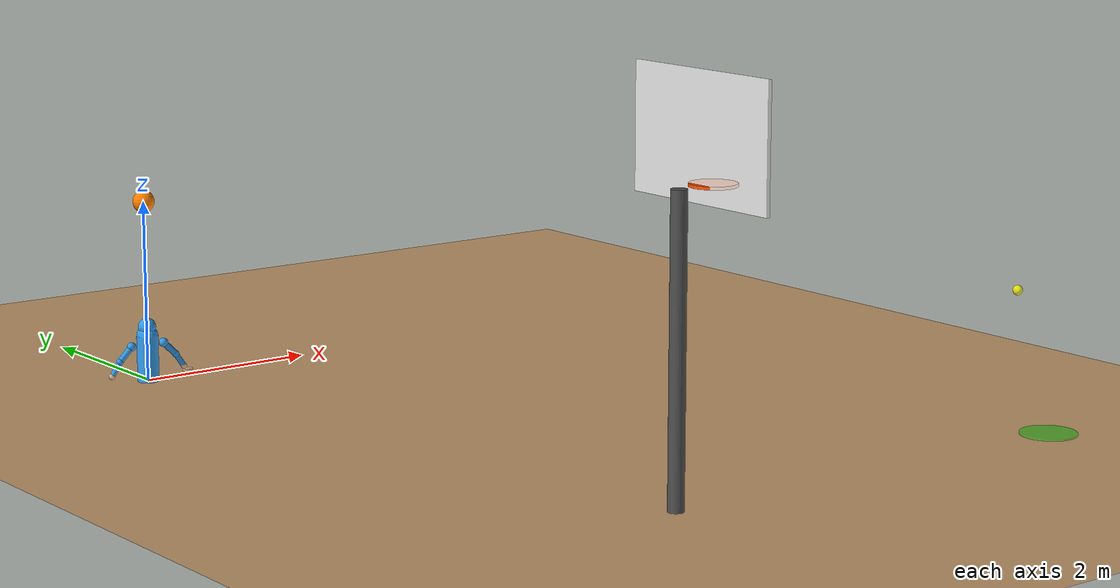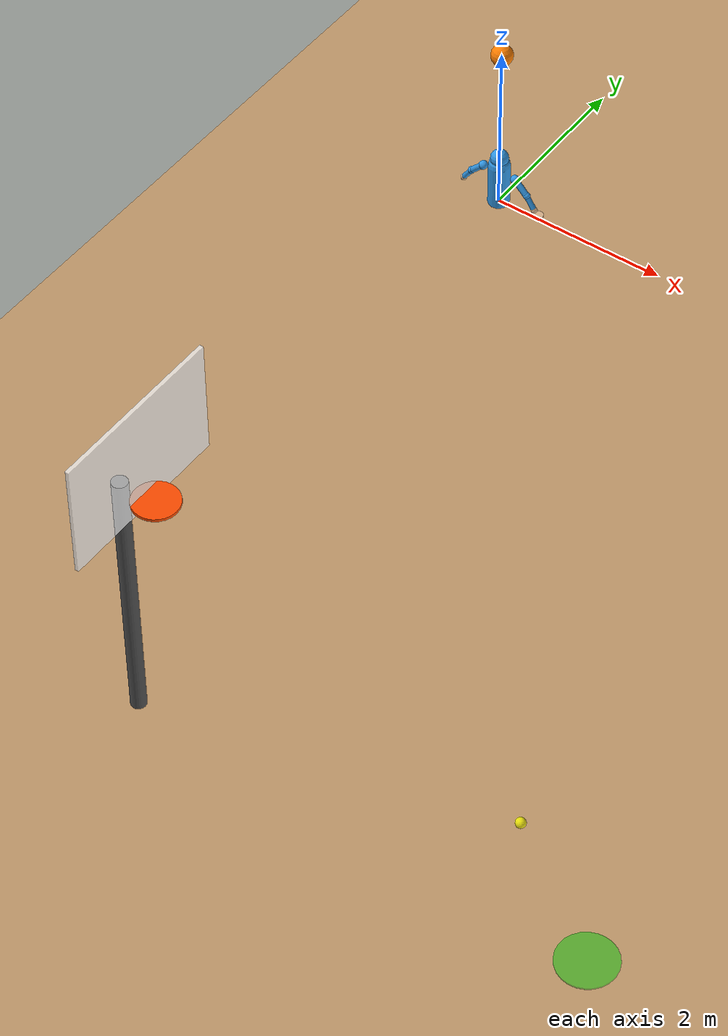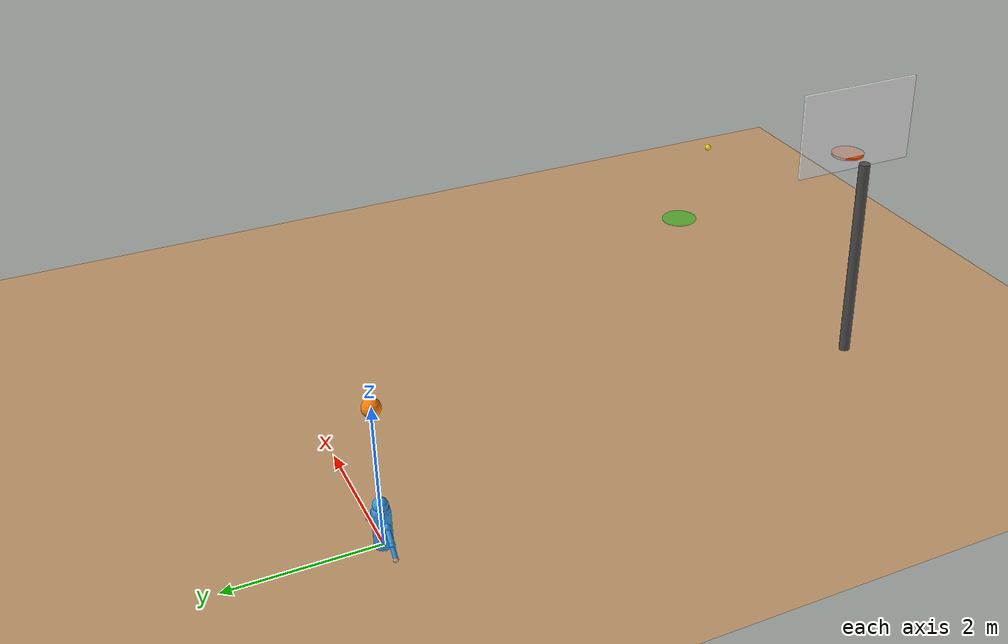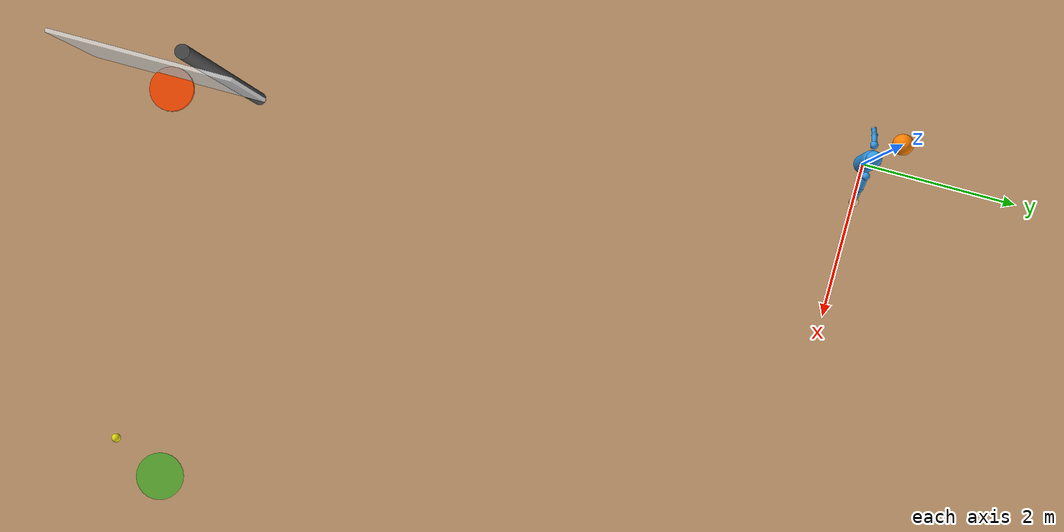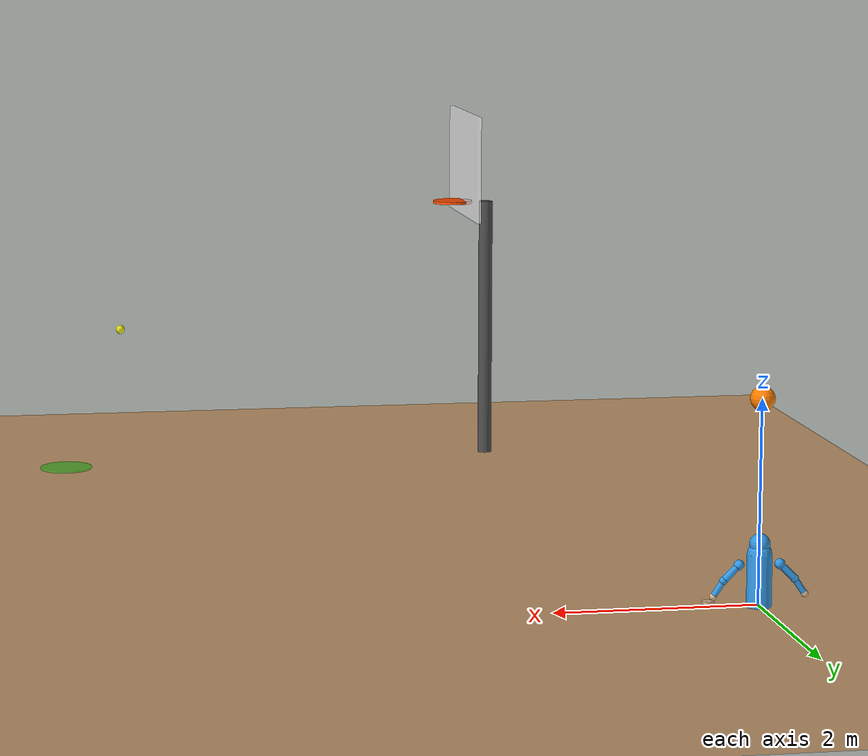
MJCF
<?xml version="1.0" encoding="utf-8"?>
<mujoco model="skeleton_shot_4438ed82">

    <option gravity="0 0 -9.81" timestep="0.002"/>

    <visual>
        <global offwidth="1920" offheight="1080"/>
        <quality shadowsize="4096"/>
        <headlight ambient="0.4 0.4 0.4" diffuse="0.8 0.8 0.8"/>
    </visual>

    <asset>
        <material name="court" rgba="0.76 0.60 0.42 1"/>
        <material name="ball" rgba="1 0.5 0 1"/>
        <material name="body" rgba="0.2 0.6 0.9 1"/>
        <material name="hand" rgba="0.85 0.7 0.55 1"/>
        <material name="rim" rgba="1 0.3 0 1"/>
        <material name="trajectory" rgba="0 1 0 0.3"/>
    </asset>

    <worldbody>
        <light pos="0 0 10" dir="0 0 -1" diffuse="1 1 1"/>

        <!-- Court -->
        <geom name="court" type="plane" size="15 15 0.1" material="court"/>

        <!-- Player position marker -->
        <geom name="player_marker" type="cylinder" pos="6.16 -7.63 0.01" size="0.3 0.01" rgba="0 0.8 0 0.5"/>

        <!-- Hoop (15 feet from player in -X direction) -->
        <body name="hoop" pos="1.59 -7.63 3.05">
            <geom name="rim" type="cylinder" size="0.229 0.015" material="rim"/>
            <geom name="backboard" type="box" pos="-0.15 0 0.45" size="0.02 0.91 0.61" rgba="1 1 1 0.8"/>
            <geom name="pole" type="cylinder" pos="-0.4 0 -1.5" size="0.08 1.5" rgba="0.3 0.3 0.3 1"/>
        </body>

        <!-- Trajectory markers showing where ball actually goes -->
        <geom name="release_marker" type="sphere" pos="5.500 -7.751 1.605" size="0.05" rgba="1 1 0 0.8"/>

        <!-- SKELETON -->
        <body name="torso" pos="0 0 0">
            <joint name="torso_x" type="slide" axis="1 0 0"/>
            <joint name="torso_y" type="slide" axis="0 1 0"/>
            <joint name="torso_z" type="slide" axis="0 0 1"/>
            <geom name="torso_geom" type="capsule" size="0.12" fromto="0 0 0 0 0 0.5" material="body"/>
            <geom name="head_geom" type="sphere" size="0.1" pos="0 0 0.6" material="body"/>

            <!-- Right arm -->
            <body name="right_shoulder" pos="0.2 0 0.4">
                <joint name="rs_x" type="slide" axis="1 0 0"/>
                <joint name="rs_y" type="slide" axis="0 1 0"/>
                <joint name="rs_z" type="slide" axis="0 0 1"/>
                <geom name="rs_geom" type="sphere" size="0.05" material="body"/>

                <body name="right_elbow" pos="0.15 0 -0.15">
                    <joint name="re_x" type="slide" axis="1 0 0"/>
                    <joint name="re_y" type="slide" axis="0 1 0"/>
                    <joint name="re_z" type="slide" axis="0 0 1"/>
                    <geom name="r_upperarm" type="capsule" size="0.035" fromto="-0.15 0 0.15 0 0 0" material="body"/>
                    <geom name="re_geom" type="sphere" size="0.04" material="body"/>

                    <body name="right_wrist" pos="0.1 0 -0.15">
                        <joint name="rw_x" type="slide" axis="1 0 0"/>
                        <joint name="rw_y" type="slide" axis="0 1 0"/>
                        <joint name="rw_z" type="slide" axis="0 0 1"/>
                        <geom name="r_forearm" type="capsule" size="0.03" fromto="-0.1 0 0.15 0 0 0" material="body"/>
                        <geom name="rw_geom" type="sphere" size="0.035" material="hand"/>

                        <body name="right_hand" pos="0.05 0 -0.05">
                            <joint name="rh_x" type="slide" axis="1 0 0"/>
                            <joint name="rh_y" type="slide" axis="0 1 0"/>
                            <joint name="rh_z" type="slide" axis="0 0 1"/>
                            <geom name="rh_geom" type="cylinder" size="0.06 0.012" material="hand"/>
                        </body>
                    </body>
                </body>
            </body>

            <!-- Left arm -->
            <body name="left_shoulder" pos="-0.2 0 0.4">
                <joint name="ls_x" type="slide" axis="1 0 0"/>
                <joint name="ls_y" type="slide" axis="0 1 0"/>
                <joint name="ls_z" type="slide" axis="0 0 1"/>
                <geom name="ls_geom" type="sphere" size="0.05" material="body"/>

                <body name="left_elbow" pos="-0.15 0 -0.15">
                    <joint name="le_x" type="slide" axis="1 0 0"/>
                    <joint name="le_y" type="slide" axis="0 1 0"/>
                    <joint name="le_z" type="slide" axis="0 0 1"/>
                    <geom name="l_upperarm" type="capsule" size="0.035" fromto="0.15 0 0.15 0 0 0" material="body"/>
                    <geom name="le_geom" type="sphere" size="0.04" material="body"/>

                    <body name="left_wrist" pos="-0.1 0 -0.15">
                        <joint name="lw_x" type="slide" axis="1 0 0"/>
                        <joint name="lw_y" type="slide" axis="0 1 0"/>
                        <joint name="lw_z" type="slide" axis="0 0 1"/>
                        <geom name="l_forearm" type="capsule" size="0.03" fromto="0.1 0 0.15 0 0 0" material="body"/>
                        <geom name="lw_geom" type="sphere" size="0.035" material="hand"/>
                    </body>
                </body>
            </body>
        </body>

        <!-- Basketball -->
        <body name="ball" pos="0 0 2">
            <freejoint name="ball_free"/>
            <geom name="basketball" type="sphere" size="0.12" material="ball" mass="0.625"/>
        </body>

    </worldbody>

    <keyframe>
        <key name="f60" time="0.000"
             qpos="6.1660 -7.6179 1.1603
                    -0.3914 0.1271 0.1570
                    -0.0810 0.0716 -0.1436
                    -0.2122 -0.1475 -0.0165
                    -0.1481 -0.0663 -0.0770
                    0.1217 -0.2525 0.1813
                    0.1988 -0.0229 -0.1700
                    -0.0256 0.0645 -0.0423
                    5.8333 -7.6330 1.2502 1 0 0 0"/>
        <key name="f62" time="0.033"
             qpos="6.1662 -7.6178 1.1603
                    -0.3910 0.1273 0.1579
                    -0.0827 0.0681 -0.1450
                    -0.2108 -0.1491 -0.0145
                    -0.1473 -0.0634 -0.0754
                    0.1242 -0.2529 0.1820
                    0.1979 -0.0236 -0.1711
                    -0.0282 0.0645 -0.0392
                    5.8344 -7.6348 1.2534 1 0 0 0"/>
        <key name="f64" time="0.067"
             qpos="6.1664 -7.6174 1.1601
                    -0.3907 0.1269 0.1591
                    -0.0839 0.0653 -0.1467
                    -0.2094 -0.1492 -0.0125
                    -0.1447 -0.0607 -0.0758
                    0.1262 -0.2537 0.1823
                    0.1962 -0.0238 -0.1712
                    -0.0303 0.0644 -0.0374
                    5.8376 -7.6351 1.2541 1 0 0 0"/>
        <key name="f66" time="0.100"
             qpos="6.1667 -7.6169 1.1596
                    -0.3909 0.1264 0.1598
                    -0.0844 0.0636 -0.1480
                    -0.2091 -0.1489 -0.0119
                    -0.1415 -0.0582 -0.0777
                    0.1273 -0.2548 0.1822
                    0.1946 -0.0239 -0.1711
                    -0.0308 0.0650 -0.0364
                    5.8408 -7.6340 1.2518 1 0 0 0"/>
        <key name="f68" time="0.133"
             qpos="6.1675 -7.6167 1.1581
                    -0.3920 0.1257 0.1603
                    -0.0839 0.0634 -0.1479
                    -0.2094 -0.1492 -0.0123
                    -0.1380 -0.0562 -0.0788
                    0.1275 -0.2556 0.1830
                    0.1950 -0.0241 -0.1723
                    -0.0324 0.0671 -0.0352
                    5.8442 -7.6329 1.2495 1 0 0 0"/>
        <key name="f70" time="0.167"
             qpos="6.1685 -7.6167 1.1562
                    -0.3937 0.1252 0.1604
                    -0.0826 0.0640 -0.1478
                    -0.2106 -0.1503 -0.0119
                    -0.1396 -0.0555 -0.0789
                    0.1269 -0.2562 0.1836
                    0.1951 -0.0240 -0.1727
                    -0.0323 0.0685 -0.0351
                    5.8421 -7.6332 1.2481 1 0 0 0"/>
        <key name="f72" time="0.200"
             qpos="6.1690 -7.6168 1.1544
                    -0.3939 0.1250 0.1602
                    -0.0837 0.0638 -0.1479
                    -0.2115 -0.1513 -0.0120
                    -0.1384 -0.0537 -0.0776
                    0.1272 -0.2564 0.1840
                    0.1950 -0.0236 -0.1731
                    -0.0332 0.0692 -0.0348
                    5.8414 -7.6331 1.2470 1 0 0 0"/>
        <key name="f74" time="0.233"
             qpos="6.1696 -7.6170 1.1520
                    -0.3945 0.1250 0.1604
                    -0.0837 0.0640 -0.1474
                    -0.2131 -0.1531 -0.0120
                    -0.1390 -0.0525 -0.0753
                    0.1273 -0.2561 0.1845
                    0.1945 -0.0236 -0.1739
                    -0.0343 0.0695 -0.0344
                    5.8392 -7.6337 1.2477 1 0 0 0"/>
        <key name="f76" time="0.267"
             qpos="6.1700 -7.6173 1.1496
                    -0.3947 0.1254 0.1606
                    -0.0835 0.0639 -0.1469
                    -0.2143 -0.1543 -0.0114
                    -0.1402 -0.0518 -0.0732
                    0.1268 -0.2554 0.1852
                    0.1943 -0.0240 -0.1748
                    -0.0356 0.0699 -0.0337
                    5.8374 -7.6341 1.2486 1 0 0 0"/>
        <key name="f78" time="0.300"
             qpos="6.1701 -7.6178 1.1473
                    -0.3940 0.1258 0.1608
                    -0.0839 0.0639 -0.1460
                    -0.2148 -0.1551 -0.0111
                    -0.1422 -0.0514 -0.0720
                    0.1271 -0.2543 0.1857
                    0.1934 -0.0246 -0.1764
                    -0.0386 0.0713 -0.0305
                    5.8351 -7.6346 1.2491 1 0 0 0"/>
        <key name="f80" time="0.333"
             qpos="6.1701 -7.6182 1.1450
                    -0.3929 0.1261 0.1616
                    -0.0850 0.0633 -0.1455
                    -0.2160 -0.1565 -0.0092
                    -0.1453 -0.0514 -0.0716
                    0.1276 -0.2534 0.1867
                    0.1929 -0.0259 -0.1781
                    -0.0436 0.0730 -0.0259
                    5.8309 -7.6369 1.2503 1 0 0 0"/>
        <key name="f82" time="0.367"
             qpos="6.1698 -7.6183 1.1436
                    -0.3919 0.1260 0.1623
                    -0.0873 0.0611 -0.1453
                    -0.2171 -0.1561 -0.0068
                    -0.1493 -0.0532 -0.0712
                    0.1287 -0.2531 0.1872
                    0.1922 -0.0265 -0.1794
                    -0.0495 0.0753 -0.0202
                    5.8242 -7.6405 1.2526 1 0 0 0"/>
        <key name="f84" time="0.400"
             qpos="6.1693 -7.6183 1.1432
                    -0.3905 0.1257 0.1632
                    -0.0908 0.0588 -0.1454
                    -0.2181 -0.1548 -0.0045
                    -0.1534 -0.0559 -0.0721
                    0.1301 -0.2532 0.1874
                    0.1904 -0.0268 -0.1799
                    -0.0559 0.0774 -0.0136
                    5.8166 -7.6443 1.2544 1 0 0 0"/>
        <key name="f86" time="0.433"
             qpos="6.1690 -7.6181 1.1435
                    -0.3895 0.1253 0.1640
                    -0.0966 0.0548 -0.1459
                    -0.2201 -0.1540 -0.0020
                    -0.1563 -0.0581 -0.0729
                    0.1315 -0.2538 0.1878
                    0.1880 -0.0269 -0.1800
                    -0.0629 0.0800 -0.0057
                    5.8064 -7.6500 1.2567 1 0 0 0"/>
        <key name="f88" time="0.467"
             qpos="6.1685 -7.6183 1.1439
                    -0.3884 0.1257 0.1649
                    -0.1022 0.0501 -0.1466
                    -0.2237 -0.1540 0.0007
                    -0.1591 -0.0610 -0.0714
                    0.1332 -0.2545 0.1883
                    0.1845 -0.0275 -0.1799
                    -0.0701 0.0820 0.0020
                    5.7952 -7.6575 1.2615 1 0 0 0"/>
        <key name="f90" time="0.500"
             qpos="6.1678 -7.6188 1.1445
                    -0.3872 0.1262 0.1656
                    -0.1084 0.0459 -0.1470
                    -0.2248 -0.1515 0.0043
                    -0.1670 -0.0669 -0.0689
                    0.1356 -0.2544 0.1888
                    0.1787 -0.0291 -0.1793
                    -0.0764 0.0831 0.0082
                    5.7804 -7.6651 1.2685 1 0 0 0"/>
        <key name="f92" time="0.533"
             qpos="6.1667 -7.6194 1.1453
                    -0.3860 0.1264 0.1658
                    -0.1162 0.0417 -0.1478
                    -0.2294 -0.1530 0.0079
                    -0.1699 -0.0675 -0.0625
                    0.1379 -0.2542 0.1893
                    0.1713 -0.0322 -0.1787
                    -0.0830 0.0840 0.0135
                    5.7651 -7.6719 1.2787 1 0 0 0"/>
        <key name="f94" time="0.567"
             qpos="6.1657 -7.6198 1.1456
                    -0.3849 0.1260 0.1663
                    -0.1261 0.0369 -0.1483
                    -0.2355 -0.1556 0.0111
                    -0.1725 -0.0640 -0.0537
                    0.1393 -0.2537 0.1900
                    0.1606 -0.0373 -0.1768
                    -0.0905 0.0829 0.0182
                    5.7467 -7.6766 1.2910 1 0 0 0"/>
        <key name="f96" time="0.600"
             qpos="6.1647 -7.6201 1.1455
                    -0.3841 0.1248 0.1670
                    -0.1376 0.0324 -0.1493
                    -0.2389 -0.1572 0.0125
                    -0.1779 -0.0570 -0.0436
                    0.1406 -0.2530 0.1911
                    0.1477 -0.0439 -0.1741
                    -0.0989 0.0821 0.0239
                    5.7263 -7.6772 1.3021 1 0 0 0"/>
        <key name="f98" time="0.633"
             qpos="6.1642 -7.6205 1.1451
                    -0.3837 0.1233 0.1677
                    -0.1516 0.0294 -0.1514
                    -0.2420 -0.1604 0.0207
                    -0.1860 -0.0580 -0.0303
                    0.1411 -0.2517 0.1922
                    0.1317 -0.0521 -0.1697
                    -0.1100 0.0792 0.0328
                    5.7009 -7.6861 1.3217 1 0 0 0"/>
        <key name="f100" time="0.667"
             qpos="6.1641 -7.6207 1.1444
                    -0.3830 0.1215 0.1686
                    -0.1669 0.0263 -0.1540
                    -0.2498 -0.1662 0.0400
                    -0.1923 -0.0598 -0.0129
                    0.1409 -0.2500 0.1943
                    0.1148 -0.0631 -0.1630
                    -0.1214 0.0745 0.0462
                    5.6720 -7.6989 1.3561 1 0 0 0"/>
        <key name="f102" time="0.700"
             qpos="6.1640 -7.6211 1.1439
                    -0.3825 0.1194 0.1693
                    -0.1904 0.0175 -0.1542
                    -0.2652 -0.1682 0.0677
                    -0.1924 -0.0620 0.0058
                    0.1415 -0.2478 0.1959
                    0.0928 -0.0751 -0.1520
                    -0.1307 0.0682 0.0630
                    5.6335 -7.7143 1.4025 1 0 0 0"/>
        <key name="f104" time="0.733"
             qpos="6.1640 -7.6214 1.1437
                    -0.3813 0.1174 0.1701
                    -0.2284 0.0018 -0.1489
                    -0.2755 -0.1634 0.0989
                    -0.1875 -0.0623 0.0288
                    0.1422 -0.2453 0.1977
                    0.0644 -0.0853 -0.1378
                    -0.1410 0.0644 0.0848
                    5.5913 -7.7279 1.4625 1 0 0 0"/>
        <key name="f106" time="0.767"
             qpos="6.1643 -7.6225 1.1431
                    -0.3784 0.1157 0.1719
                    -0.2756 -0.0153 -0.1402
                    -0.2776 -0.1543 0.1368
                    -0.1831 -0.0629 0.0542
                    0.1441 -0.2417 0.2003
                    0.0272 -0.0931 -0.1192
                    -0.1515 0.0630 0.1125
                    5.5495 -7.7393 1.5359 1 0 0 0"/>
        <key name="f108" time="0.800"
             qpos="6.1638 -7.6245 1.1417
                    -0.3739 0.1148 0.1749
                    -0.3231 -0.0286 -0.1263
                    -0.2703 -0.1452 0.1796
                    -0.1794 -0.0669 0.0852
                    0.1480 -0.2364 0.2049
                    -0.0143 -0.0999 -0.0955
                    -0.1561 0.0638 0.1415
                    5.5170 -7.7503 1.6251 1 0 0 0"/>
        <key name="f110" time="0.833"
             qpos="6.1624 -7.6266 1.1407
                    -0.3682 0.1139 0.1783
                    -0.3714 -0.0428 -0.1111
                    -0.2570 -0.1338 0.2292
                    -0.1657 -0.0612 0.1179
                    0.1542 -0.2315 0.2099
                    -0.0564 -0.1057 -0.0663
                    -0.1534 0.0676 0.1700
                    5.5001 -7.7505 1.7249 1 0 0 0"/>
        <key name="f112" time="0.867"
             qpos="6.1595 -7.6293 1.1390
                    -0.3609 0.1133 0.1834
                    -0.4175 -0.0536 -0.0871
                    -0.2348 -0.1210 0.2684
                    -0.1432 -0.0439 0.1514
                    0.1623 -0.2252 0.2157
                    -0.0968 -0.1111 -0.0307
                    -0.1450 0.0748 0.1998
                    5.4920 -7.7431 1.7007 1 0 0 0"/>
        <key name="f114" time="0.900"
             qpos="6.1552 -7.6325 1.1366
                    -0.3531 0.1130 0.1897
                    -0.4495 -0.0562 -0.0609
                    -0.2067 -0.1092 0.3039
                    -0.1224 -0.0260 0.1767
                    0.1710 -0.2174 0.2223
                    -0.1310 -0.1159 0.0123
                    -0.1328 0.0850 0.2292
                    5.4838 -7.7356 1.7856 1 0 0 0"/>
        <key name="f116" time="0.933"
             qpos="6.1497 -7.6357 1.1340
                    -0.3456 0.1127 0.1968
                    -0.4684 -0.0491 -0.0324
                    -0.1717 -0.1006 0.3320
                    -0.0988 -0.0144 0.1966
                    0.1790 -0.2105 0.2295
                    -0.1521 -0.1207 0.0610
                    -0.1120 0.0968 0.2556
                    5.4757 -7.7281 1.8595 1 0 0 0"/>
        <key name="f118" time="0.967"
             qpos="6.1435 -7.6393 1.1327
                    -0.3377 0.1133 0.2026
                    -0.4734 -0.0335 -0.0014
                    -0.1406 -0.1043 0.3578
                    -0.0716 -0.0071 0.2101
                    0.1850 -0.2046 0.2355
                    -0.1554 -0.1267 0.1105
                    -0.0865 0.1071 0.2795
                    5.4675 -7.7206 1.9226 1 0 0 0"/>
        <key name="f120" time="1.000"
             qpos="6.1362 -7.6427 1.1329
                    -0.3303 0.1141 0.2070
                    -0.4725 -0.0207 0.0333
                    -0.1142 -0.1024 0.3724
                    -0.0490 -0.0039 0.2157
                    0.1910 -0.2002 0.2401
                    -0.1464 -0.1333 0.1583
                    -0.0580 0.1181 0.2987
                    5.4594 -7.7132 1.9748 1 0 0 0"/>
        <key name="f122" time="1.033"
             qpos="6.1276 -7.6462 1.1341
                    -0.3228 0.1149 0.2099
                    -0.4663 -0.0091 0.0708
                    -0.0928 -0.1015 0.3784
                    -0.0354 -0.0052 0.2130
                    0.1954 -0.1963 0.2441
                    -0.1313 -0.1374 0.2000
                    -0.0292 0.1296 0.3131
                    5.4512 -7.7057 2.0160 1 0 0 0"/>
        <key name="f124" time="1.067"
             qpos="6.1188 -7.6496 1.1376
                    -0.3143 0.1158 0.2106
                    -0.4601 0.0007 0.1097
                    -0.0736 -0.0992 0.3785
                    -0.0255 -0.0085 0.2044
                    0.1976 -0.1937 0.2451
                    -0.1101 -0.1394 0.2352
                    -0.0048 0.1425 0.3248
                    5.4430 -7.6982 2.0464 1 0 0 0"/>
        <key name="f126" time="1.100"
             qpos="6.1097 -7.6532 1.1414
                    -0.3057 0.1162 0.2108
                    -0.4532 0.0085 0.1465
                    -0.0584 -0.0959 0.3754
                    -0.0199 -0.0131 0.1954
                    0.1997 -0.1921 0.2456
                    -0.0886 -0.1379 0.2640
                    0.0171 0.1516 0.3308
                    5.4349 -7.6908 2.0659 1 0 0 0"/>
        <key name="f128" time="1.133"
             qpos="6.1005 -7.6565 1.1469
                    -0.2965 0.1163 0.2097
                    -0.4468 0.0137 0.1789
                    -0.0473 -0.0917 0.3706
                    -0.0183 -0.0148 0.1880
                    0.2027 -0.1910 0.2446
                    -0.0691 -0.1364 0.2866
                    0.0349 0.1592 0.3338
                    5.4267 -7.6833 2.0744 1 0 0 0"/>
        <key name="f130" time="1.167"
             qpos="6.0914 -7.6593 1.1541
                    -0.2882 0.1163 0.2087
                    -0.4410 0.0139 0.2040
                    -0.0392 -0.0843 0.3666
                    -0.0161 -0.0109 0.1838
                    0.2072 -0.1906 0.2421
                    -0.0546 -0.1335 0.3040
                    0.0474 0.1634 0.3361
                    5.4186 -7.6758 2.0721 1 0 0 0"/>
        <key name="f132" time="1.200"
             qpos="6.0824 -7.6621 1.1619
                    -0.2793 0.1159 0.2085
                    -0.4346 0.0156 0.2263
                    -0.0342 -0.0782 0.3625
                    -0.0159 -0.0066 0.1807
                    0.2131 -0.1881 0.2403
                    -0.0432 -0.1323 0.3196
                    0.0556 0.1648 0.3395
                    5.4104 -7.6684 2.0589 1 0 0 0"/>
        <key name="f134" time="1.233"
             qpos="6.0742 -7.6643 1.1710
                    -0.2720 0.1145 0.2089
                    -0.4264 0.0178 0.2402
                    -0.0315 -0.0737 0.3628
                    -0.0123 -0.0031 0.1810
                    0.2185 -0.1859 0.2397
                    -0.0339 -0.1317 0.3331
                    0.0581 0.1638 0.3427
                    5.4023 -7.6609 2.0347 1 0 0 0"/>
        <key name="f136" time="1.267"
             qpos="6.0682 -7.6660 1.1823
                    -0.2676 0.1126 0.2091
                    -0.4206 0.0194 0.2495
                    -0.0306 -0.0727 0.3652
                    -0.0079 -0.0001 0.1846
                    0.2219 -0.1849 0.2388
                    -0.0270 -0.1302 0.3448
                    0.0559 0.1604 0.3470
                    5.3941 -7.6534 1.9997 1 0 0 0"/>
        <key name="f138" time="1.300"
             qpos="6.0642 -7.6672 1.1957
                    -0.2653 0.1099 0.2081
                    -0.4179 0.0213 0.2571
                    -0.0306 -0.0739 0.3711
                    -0.0072 -0.0012 0.1844
                    0.2242 -0.1837 0.2378
                    -0.0240 -0.1289 0.3554
                    0.0491 0.1554 0.3534
                    5.3860 -7.6459 1.9538 1 0 0 0"/>
        <key name="f140" time="1.333"
             qpos="6.0606 -7.6678 1.2097
                    -0.2644 0.1071 0.2091
                    -0.4175 0.0220 0.2670
                    -0.0340 -0.0763 0.3805
                    -0.0055 -0.0027 0.1884
                    0.2244 -0.1835 0.2381
                    -0.0219 -0.1271 0.3646
                    0.0394 0.1489 0.3598
                    5.3778 -7.6385 1.8969 1 0 0 0"/>
        <key name="f142" time="1.367"
             qpos="6.0576 -7.6686 1.2226
                    -0.2634 0.1053 0.2117
                    -0.4177 0.0215 0.2825
                    -0.0534 -0.0799 0.3951
                    -0.0123 -0.0075 0.2041
                    0.2243 -0.1827 0.2395
                    -0.0232 -0.1246 0.3709
                    0.0302 0.1403 0.3684
                    5.3697 -7.6310 1.8292 1 0 0 0"/>
        <key name="f144" time="1.400"
             qpos="6.0546 -7.6691 1.2335
                    -0.2616 0.1028 0.2152
                    -0.4128 0.0213 0.3048
                    -0.0926 -0.0799 0.4062
                    -0.0351 -0.0176 0.2036
                    0.2239 -0.1818 0.2409
                    -0.0247 -0.1206 0.3768
                    0.0207 0.1284 0.3767
                    5.3615 -7.6235 1.7506 1 0 0 0"/>
        <key name="f146" time="1.433"
             qpos="6.0518 -7.6698 1.2426
                    -0.2598 0.1009 0.2201
                    -0.4058 0.0193 0.3302
                    -0.1413 -0.0733 0.4131
                    -0.0675 -0.0229 0.1907
                    0.2226 -0.1805 0.2416
                    -0.0246 -0.1168 0.3817
                    0.0113 0.1148 0.3841
                    5.3534 -7.6161 1.6611 1 0 0 0"/>
        <key name="f148" time="1.467"
             qpos="6.0494 -7.6705 1.2495
                    -0.2571 0.0995 0.2251
                    -0.3979 0.0176 0.3538
                    -0.1919 -0.0630 0.4194
                    -0.1027 -0.0279 0.1726
                    0.2215 -0.1791 0.2415
                    -0.0244 -0.1136 0.3856
                    0.0034 0.1016 0.3896
                    5.3452 -7.6086 1.5606 1 0 0 0"/>
        <key name="f150" time="1.500"
             qpos="6.0463 -7.6711 1.2539
                    -0.2538 0.0982 0.2297
                    -0.3904 0.0187 0.3737
                    -0.2360 -0.0529 0.4235
                    -0.1325 -0.0361 0.1562
                    0.2214 -0.1788 0.2416
                    -0.0234 -0.1111 0.3866
                    -0.0025 0.0898 0.3929
                    5.3370 -7.6011 1.4493 1 0 0 0"/>
        <key name="f152" time="1.533"
             qpos="6.0441 -7.6711 1.2556
                    -0.2499 0.0970 0.2342
                    -0.3819 0.0228 0.3861
                    -0.2750 -0.0464 0.4266
                    -0.1568 -0.0472 0.1420
                    0.2224 -0.1795 0.2419
                    -0.0236 -0.1105 0.3849
                    -0.0056 0.0811 0.3950
                    5.3289 -7.5936 1.3271 1 0 0 0"/>
        <key name="f154" time="1.567"
             qpos="6.0422 -7.6711 1.2563
                    -0.2471 0.0957 0.2372
                    -0.3752 0.0282 0.3915
                    -0.2945 -0.0426 0.4256
                    -0.1768 -0.0566 0.1248
                    0.2236 -0.1813 0.2421
                    -0.0233 -0.1111 0.3807
                    -0.0082 0.0760 0.3955
                    5.3207 -7.5862 1.1939 1 0 0 0"/>
        <key name="f156" time="1.600"
             qpos="6.0413 -7.6708 1.2566
                    -0.2448 0.0944 0.2376
                    -0.3716 0.0348 0.3922
                    -0.2970 -0.0406 0.4222
                    -0.1866 -0.0591 0.1052
                    0.2253 -0.1836 0.2407
                    -0.0229 -0.1146 0.3767
                    -0.0108 0.0756 0.3935
                    5.3126 -7.5787 1.0499 1 0 0 0"/>
        <key name="f158" time="1.633"
             qpos="6.0409 -7.6706 1.2565
                    -0.2446 0.0923 0.2364
                    -0.3692 0.0422 0.3897
                    -0.2870 -0.0410 0.4225
                    -0.1848 -0.0591 0.0963
                    0.2278 -0.1861 0.2396
                    -0.0239 -0.1200 0.3718
                    -0.0125 0.0786 0.3909
                    5.3044 -7.5712 0.8950 1 0 0 0"/>
        <key name="f160" time="1.667"
             qpos="6.0401 -7.6711 1.2553
                    -0.2424 0.0927 0.2362
                    -0.3684 0.0484 0.3859
                    -0.2768 -0.0437 0.4264
                    -0.1735 -0.0526 0.1044
                    0.2318 -0.1884 0.2392
                    -0.0257 -0.1273 0.3658
                    -0.0133 0.0843 0.3867
                    5.2963 -7.5638 0.7291 1 0 0 0"/>
        <key name="f162" time="1.700"
             qpos="6.0393 -7.6720 1.2538
                    -0.2390 0.0940 0.2351
                    -0.3663 0.0530 0.3862
                    -0.2727 -0.0446 0.4283
                    -0.1756 -0.0458 0.1061
                    0.2364 -0.1907 0.2381
                    -0.0275 -0.1362 0.3588
                    -0.0136 0.0922 0.3822
                    5.2881 -7.5563 0.5524 1 0 0 0"/>
        <key name="f164" time="1.733"
             qpos="6.0390 -7.6733 1.2515
                    -0.2346 0.0956 0.2351
                    -0.3625 0.0549 0.3866
                    -0.2730 -0.0412 0.4293
                    -0.1809 -0.0306 0.1009
                    0.2406 -0.1923 0.2368
                    -0.0289 -0.1471 0.3492
                    -0.0136 0.1013 0.3756
                    5.2800 -7.5488 0.3648 1 0 0 0"/>
        <key name="f166" time="1.767"
             qpos="6.0382 -7.6756 1.2498
                    -0.2288 0.0979 0.2346
                    -0.3597 0.0553 0.3887
                    -0.2746 -0.0350 0.4314
                    -0.1841 -0.0128 0.0968
                    0.2446 -0.1934 0.2332
                    -0.0302 -0.1576 0.3383
                    -0.0126 0.1117 0.3665
                    5.2718 -7.5414 0.1662 1 0 0 0"/>
        <key name="f168" time="1.800"
             qpos="6.0380 -7.6782 1.2481
                    -0.2218 0.1002 0.2340
                    -0.3574 0.0562 0.3891
                    -0.2757 -0.0286 0.4360
                    -0.1844 -0.0002 0.0916
                    0.2489 -0.1951 0.2294
                    -0.0331 -0.1675 0.3230
                    -0.0096 0.1234 0.3551
                    5.2637 -7.5339 -0.0432 1 0 0 0"/>
        <key name="f170" time="1.833"
             qpos="6.0388 -7.6812 1.2458
                    -0.2160 0.1021 0.2341
                    -0.3539 0.0581 0.3887
                    -0.2732 -0.0232 0.4396
                    -0.1835 0.0090 0.0862
                    0.2522 -0.1982 0.2268
                    -0.0379 -0.1750 0.3006
                    -0.0044 0.1358 0.3410
                    5.2555 -7.5264 -0.2635 1 0 0 0"/>
        <key name="f172" time="1.867"
             qpos="6.0409 -7.6846 1.2434
                    -0.2110 0.1044 0.2341
                    -0.3446 0.0586 0.3827
                    -0.2638 -0.0199 0.4372
                    -0.1922 0.0158 0.0923
                    0.2555 -0.2010 0.2234
                    -0.0418 -0.1831 0.2722
                    0.0005 0.1482 0.3251
                    5.2473 -7.5189 -0.4948 1 0 0 0"/>
        <key name="f174" time="1.900"
             qpos="6.0436 -7.6878 1.2407
                    -0.2082 0.1059 0.2346
                    -0.3380 0.0606 0.3820
                    -0.2584 -0.0176 0.4377
                    -0.1916 0.0205 0.0927
                    0.2582 -0.2032 0.2187
                    -0.0395 -0.1914 0.2397
                    0.0038 0.1586 0.3100
                    5.2392 -7.5115 -0.7369 1 0 0 0"/>
        <key name="f176" time="1.933"
             qpos="6.0471 -7.6909 1.2380
                    -0.2072 0.1067 0.2354
                    -0.3334 0.0626 0.3836
                    -0.2501 -0.0171 0.4346
                    -0.1958 0.0256 0.1023
                    0.2607 -0.2046 0.2126
                    -0.0331 -0.1987 0.2027
                    0.0061 0.1652 0.2964
                    5.2310 -7.5040 -0.9899 1 0 0 0"/>
        <key name="f178" time="1.967"
             qpos="6.0513 -7.6942 1.2347
                    -0.2074 0.1073 0.2363
                    -0.3235 0.0618 0.3790
                    -0.2302 -0.0188 0.4221
                    -0.2100 0.0272 0.1151
                    0.2623 -0.2049 0.2072
                    -0.0215 -0.2031 0.1615
                    0.0049 0.1659 0.2859
                    5.2229 -7.4965 -1.2538 1 0 0 0"/>
    </keyframe>

</mujoco>
